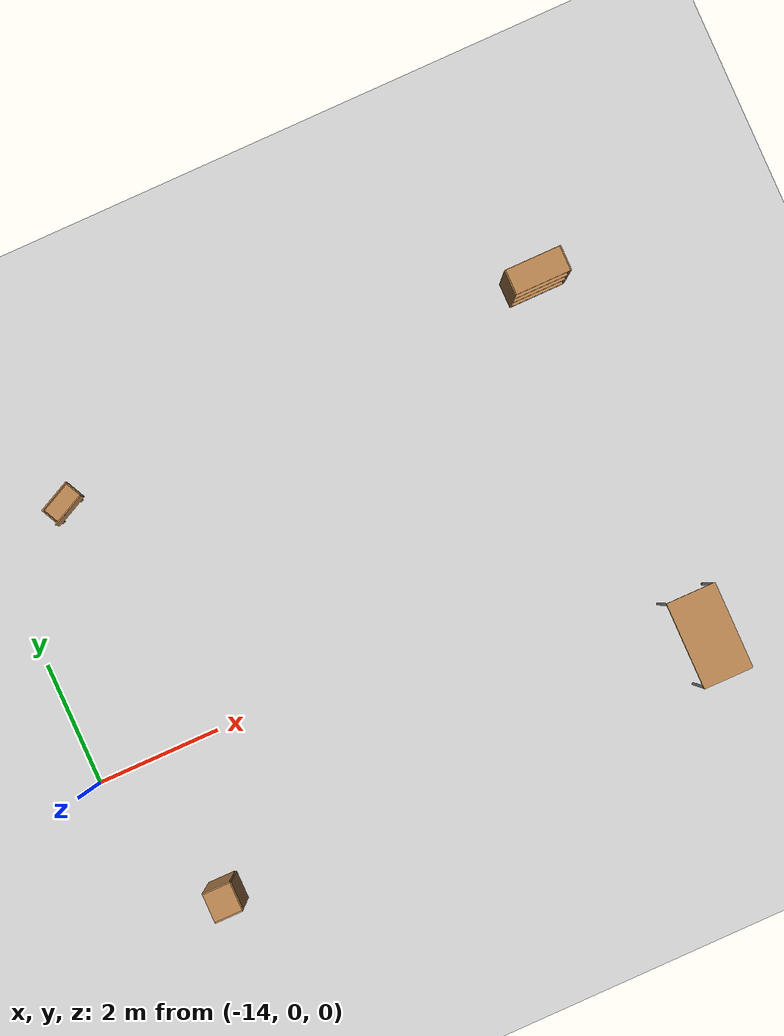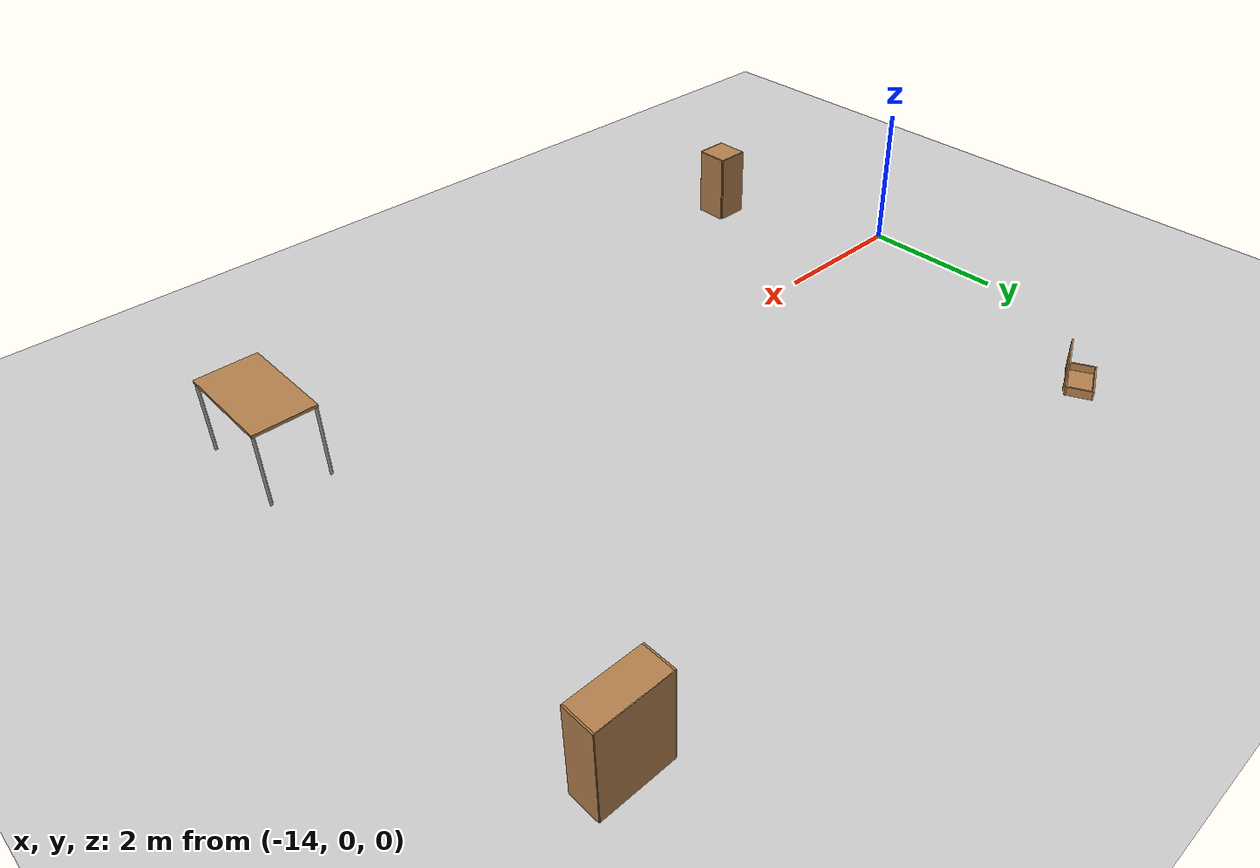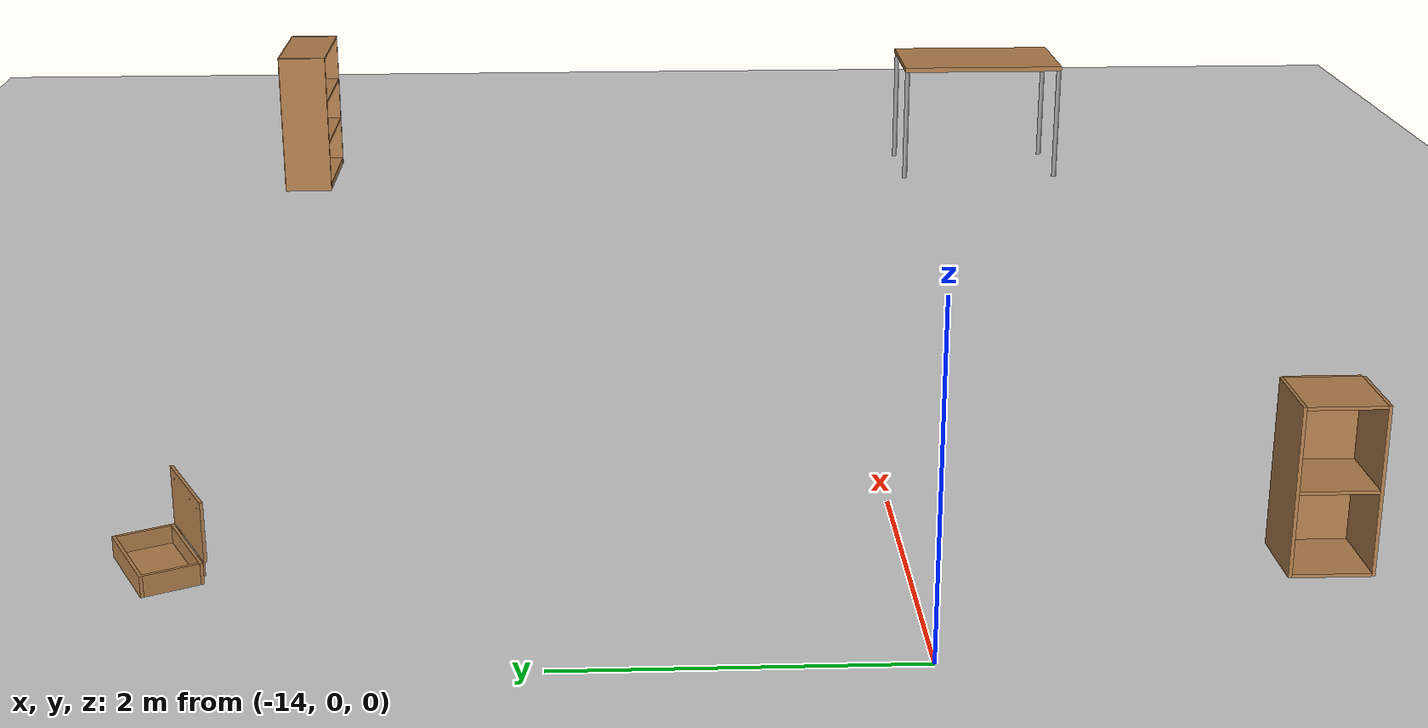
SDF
<sdf version="1.6">
 <world name="default">
  <model name="ground_plane">
   <static>1</static>
   <link name="link">
    <collision name="collision">
     <geometry><plane><normal>0 0 1</normal><size>100 100</size></plane></geometry>
     <surface><friction><ode><mu>100</mu><mu2>50</mu2></ode></friction></surface>
    </collision>
    <visual name="visual">
     <cast_shadows>0</cast_shadows>
     <geometry><plane><normal>0 0 1</normal><size>100 100</size></plane></geometry>
     <material>
      <script><uri>file://media/materials/scripts/gazebo.material</uri><name>Gazebo/Grey</name></script>
     </material>
    </visual>
   </link>
  </model>
  <model name="cabinet">
   <static>1</static>
   <link name="cabinet_bottom_plate">
    <inertial>
     <pose>0 0 -1 0 -0 0</pose>
     <inertia><ixx>2.05</ixx><ixy>0</ixy><ixz>0</ixz><iyy>2.05</iyy><iyz>0</iyz><izz>2.05</izz></inertia>
     <mass>25</mass>
    </inertial>
    <collision name="cabinet_bottom_plate_geom">
     <pose>0 0 0.01 0 -0 0</pose>
     <geometry><box><size>0.45 0.45 0.02</size></box></geometry>
    </collision>
    <visual name="cabinet_bottom_plate_geom_visual">
     <pose>0 0 0.01 0 -0 0</pose>
     <geometry><box><size>0.45 0.45 0.02</size></box></geometry>
     <material>
      <script><uri>file://media/materials/scripts/gazebo.material</uri><name>Gazebo/Wood</name></script>
     </material>
    </visual>
    <collision name="cabinet_bottom_plate_geom_cabinet_back_plate">
     <pose>0.235 0 0.51 0 -0 0</pose>
     <geometry><box><size>0.02 0.45 1.02</size></box></geometry>
    </collision>
    <visual name="cabinet_bottom_plate_geom_cabinet_back_plate_visual">
     <pose>0.235 0 0.51 0 -0 0</pose>
     <geometry><box><size>0.02 0.45 1.02</size></box></geometry>
     <material>
      <script><uri>file://media/materials/scripts/gazebo.material</uri><name>Gazebo/Wood</name></script>
     </material>
    </visual>
    <collision name="cabinet_bottom_plate_geom_cabinet_left_plate">
     <pose>0 0.235 0.51 0 -0 0</pose>
     <geometry><box><size>0.45 0.02 1.02</size></box></geometry>
    </collision>
    <visual name="cabinet_bottom_plate_geom_cabinet_left_plate_visual">
     <pose>0 0.235 0.51 0 -0 0</pose>
     <geometry><box><size>0.45 0.02 1.02</size></box></geometry>
     <material>
      <script><uri>file://media/materials/scripts/gazebo.material</uri><name>Gazebo/Wood</name></script>
     </material>
    </visual>
    <collision name="cabinet_bottom_plate_geom_cabinet_middle_plate">
     <pose>0 0 0.51 0 -0 0</pose>
     <geometry><box><size>0.45 0.45 0.02</size></box></geometry>
    </collision>
    <visual name="cabinet_bottom_plate_geom_cabinet_middle_plate_visual">
     <pose>0 0 0.51 0 -0 0</pose>
     <geometry><box><size>0.45 0.45 0.02</size></box></geometry>
     <material>
      <script><uri>file://media/materials/scripts/gazebo.material</uri><name>Gazebo/Wood</name></script>
     </material>
    </visual>
    <collision name="cabinet_bottom_plate_geom_cabinet_right_plate">
     <pose>0 -0.235 0.51 0 -0 0</pose>
     <geometry><box><size>0.45 0.02 1.02</size></box></geometry>
    </collision>
    <visual name="cabinet_bottom_plate_geom_cabinet_right_plate_visual">
     <pose>0 -0.235 0.51 0 -0 0</pose>
     <geometry><box><size>0.45 0.02 1.02</size></box></geometry>
     <material>
      <script><uri>file://media/materials/scripts/gazebo.material</uri><name>Gazebo/Wood</name></script>
     </material>
    </visual>
    <collision name="cabinet_bottom_plate_geom_cabinet_top_plate">
     <pose>0 0 1.01 0 -0 0</pose>
     <geometry><box><size>0.45 0.45 0.02</size></box></geometry>
    </collision>
    <visual name="cabinet_bottom_plate_geom_cabinet_top_plate_visual">
     <pose>0 0 1.01 0 -0 0</pose>
     <geometry><box><size>0.45 0.45 0.02</size></box></geometry>
     <material>
      <script><uri>file://media/materials/scripts/gazebo.material</uri><name>Gazebo/Wood</name></script>
     </material>
    </visual>
   </link>
   <pose>-12.8791 -2.34771 0 0 -0 0</pose>
  </model>
  <model name="bookshelf">
   <static>1</static>
   <link name="link">
    <inertial><mass>1</mass></inertial>
    <collision name="back">
     <pose>0 0.005 0.6 0 -0 0</pose>
     <geometry><box><size>0.9 0.01 1.2</size></box></geometry>
    </collision>
    <visual name="visual1">
     <pose>0 0.005 0.6 0 -0 0</pose>
     <geometry><box><size>0.9 0.01 1.2</size></box></geometry>
     <material>
      <script><uri>file://media/materials/scripts/gazebo.material</uri><name>Gazebo/Wood</name></script>
     </material>
    </visual>
    <collision name="left_side">
     <pose>0.45 -0.195 0.6 0 -0 0</pose>
     <geometry><box><size>0.02 0.4 1.2</size></box></geometry>
    </collision>
    <visual name="visual2">
     <pose>0.45 -0.195 0.6 0 -0 0</pose>
     <geometry><box><size>0.02 0.4 1.2</size></box></geometry>
     <material>
      <script><uri>file://media/materials/scripts/gazebo.material</uri><name>Gazebo/Wood</name></script>
     </material>
    </visual>
    <collision name="right_side">
     <pose>-0.45 -0.195 0.6 0 -0 0</pose>
     <geometry><box><size>0.02 0.4 1.2</size></box></geometry>
    </collision>
    <visual name="visual3">
     <pose>-0.45 -0.195 0.6 0 -0 0</pose>
     <geometry><box><size>0.02 0.4 1.2</size></box></geometry>
     <material>
      <script><uri>file://media/materials/scripts/gazebo.material</uri><name>Gazebo/Wood</name></script>
     </material>
    </visual>
    <collision name="bottom">
     <pose>0 -0.195 0.03 0 -0 0</pose>
     <geometry><box><size>0.88 0.4 0.06</size></box></geometry>
    </collision>
    <visual name="visual4">
     <pose>0 -0.195 0.03 0 -0 0</pose>
     <geometry><box><size>0.88 0.4 0.06</size></box></geometry>
     <material>
      <script><uri>file://media/materials/scripts/gazebo.material</uri><name>Gazebo/Wood</name></script>
     </material>
    </visual>
    <collision name="top">
     <pose>0 -0.195 1.19 0 -0 0</pose>
     <geometry><box><size>0.88 0.4 0.02</size></box></geometry>
    </collision>
    <visual name="visual5">
     <pose>0 -0.195 1.19 0 -0 0</pose>
     <geometry><box><size>0.88 0.4 0.02</size></box></geometry>
     <material>
      <script><uri>file://media/materials/scripts/gazebo.material</uri><name>Gazebo/Wood</name></script>
     </material>
    </visual>
    <collision name="low_shelf">
     <pose>0 -0.195 0.43 0 -0 0</pose>
     <geometry><box><size>0.88 0.4 0.02</size></box></geometry>
    </collision>
    <visual name="visual6">
     <pose>0 -0.195 0.43 0 -0 0</pose>
     <geometry><box><size>0.88 0.4 0.02</size></box></geometry>
     <material>
      <script><uri>file://media/materials/scripts/gazebo.material</uri><name>Gazebo/Wood</name></script>
     </material>
    </visual>
    <collision name="high_shelf">
     <pose>0 -0.195 0.8 0 -0 0</pose>
     <geometry><box><size>0.88 0.4 0.02</size></box></geometry>
    </collision>
    <visual name="visual7">
     <pose>0 -0.195 0.8 0 -0 0</pose>
     <geometry><box><size>0.88 0.4 0.02</size></box></geometry>
     <material>
      <script><uri>file://media/materials/scripts/gazebo.material</uri><name>Gazebo/Wood</name></script>
     </material>
    </visual>
   </link>
   <pose>-4.71155 4.52272 0 0 -0 0</pose>
  </model>
  <model name="table_0">
   <static>0</static>
   <link name="link">
    <collision name="surface">
     <pose>0 0 1 0 -0 0</pose>
     <geometry><box><size>1.5 0.8 0.03</size></box></geometry>
     <surface><friction><ode><mu>0.6</mu><mu2>0.6</mu2></ode></friction></surface>
    </collision>
    <visual name="visual1">
     <pose>0 0 1 0 -0 0</pose>
     <geometry><box><size>1.4 0.8 0.04</size></box></geometry>
     <material>
      <script><uri>file://media/materials/scripts/gazebo.material</uri><name>Gazebo/Wood</name></script>
     </material>
    </visual>
    <collision name="front_left_leg">
     <pose>0.68 0.38 0.5 0 -0 0</pose>
     <geometry><cylinder><radius>0.02</radius><length>1</length></cylinder></geometry>
    </collision>
    <visual name="front_left_leg">
     <pose>0.68 0.38 0.5 0 -0 0</pose>
     <geometry><cylinder><radius>0.02</radius><length>1</length></cylinder></geometry>
     <material>
      <script><uri>file://media/materials/scripts/gazebo.material</uri><name>Gazebo/Grey</name></script>
     </material>
    </visual>
    <collision name="front_right_leg">
     <pose>0.68 -0.38 0.5 0 -0 0</pose>
     <geometry><cylinder><radius>0.02</radius><length>1</length></cylinder></geometry>
    </collision>
    <visual name="front_right_leg">
     <pose>0.68 -0.38 0.5 0 -0 0</pose>
     <geometry><cylinder><radius>0.02</radius><length>1</length></cylinder></geometry>
     <material>
      <script><uri>file://media/materials/scripts/gazebo.material</uri><name>Gazebo/Grey</name></script>
     </material>
    </visual>
    <collision name="back_right_leg">
     <pose>-0.68 -0.38 0.5 0 -0 0</pose>
     <geometry><cylinder><radius>0.02</radius><length>1</length></cylinder></geometry>
    </collision>
    <visual name="back_right_leg">
     <pose>-0.68 -0.38 0.5 0 -0 0</pose>
     <geometry><cylinder><radius>0.02</radius><length>1</length></cylinder></geometry>
     <material>
      <script><uri>file://media/materials/scripts/gazebo.material</uri><name>Gazebo/Grey</name></script>
     </material>
    </visual>
    <collision name="back_left_leg">
     <pose>-0.68 0.38 0.5 0 -0 0</pose>
     <geometry><cylinder><radius>0.02</radius><length>1</length></cylinder></geometry>
    </collision>
    <visual name="back_left_leg">
     <pose>-0.68 0.38 0.5 0 -0 0</pose>
     <geometry><cylinder><radius>0.02</radius><length>1</length></cylinder></geometry>
     <material>
      <script><uri>file://media/materials/scripts/gazebo.material</uri><name>Gazebo/Grey</name></script>
     </material>
    </visual>
    <inertial>
     <inertia><ixx>1</ixx><ixy>0</ixy><ixz>0</ixz><iyy>1</iyy><iyz>0</iyz><izz>1</izz></inertia>
     <mass>1</mass>
    </inertial>
   </link>
   <pose>-4.58417 -1.69388 -8e-06 1e-06 -0 -1.57405</pose>
  </model>
  <model name="wooden_case_clone">
   <link name="base">
    <pose>0 0 0.024 0 -0 0</pose>
    <inertial>
     <pose>-0.022184 0 0.171592 0 -0 0</pose>
     <mass>3.96264</mass>
     <inertia>
      <ixx>0.213536</ixx>
      <ixy>0</ixy>
      <ixz>0.000779377</ixz>
      <iyy>0.0708943</iyy>
      <iyz>0</iyz>
      <izz>0.154604</izz>
     </inertia>
    </inertial>
    <collision name="collision_back">
     <pose>-0.053975 0 0.1778 0 -0 0</pose>
     <geometry><box><size>0.01905 0.5461 0.3175</size></box></geometry>
     <surface>
      <contact>
       <poissons_ratio>0.347</poissons_ratio>
       <elastic_modulus>8.8e+09</elastic_modulus>
       <ode><kp>100000</kp><kd>100</kd><max_vel>100</max_vel><min_depth>0.001</min_depth></ode>
      </contact>
      <friction>
       <torsional>
        <coefficient>1</coefficient>
        <use_patch_radius>0</use_patch_radius>
        <surface_radius>0.01</surface_radius>
       </torsional>
      </friction>
     </surface>
    </collision>
    <visual name="visual_back">
     <pose>-0.053975 0 0.1778 0 -0 0</pose>
     <geometry><box><size>0.01905 0.5461 0.3175</size></box></geometry>
     <material>
      <script><uri>file://media/materials/scripts/gazebo.material</uri><name>Gazebo/Wood</name></script>
     </material>
    </visual>
    <collision name="collision_bottom">
     <pose>0 0 0.009525 0 -0 0</pose>
     <geometry><box><size>0.127 0.5842 0.01905</size></box></geometry>
     <surface>
      <contact>
       <poissons_ratio>0.347</poissons_ratio>
       <elastic_modulus>8.8e+09</elastic_modulus>
       <ode><kp>100000</kp><kd>100</kd><max_vel>100</max_vel><min_depth>0.001</min_depth></ode>
      </contact>
      <friction>
       <torsional>
        <coefficient>1</coefficient>
        <use_patch_radius>0</use_patch_radius>
        <surface_radius>0.01</surface_radius>
       </torsional>
      </friction>
     </surface>
    </collision>
    <visual name="visual_bottom">
     <pose>0 0 0.009525 0 -0 0</pose>
     <geometry><box><size>0.127 0.5842 0.01905</size></box></geometry>
     <material>
      <script><uri>file://media/materials/scripts/gazebo.material</uri><name>Gazebo/Wood</name></script>
     </material>
    </visual>
    <collision name="collision_top">
     <pose>0 0 0.346075 0 -0 0</pose>
     <geometry><box><size>0.127 0.5842 0.01905</size></box></geometry>
     <surface>
      <contact>
       <poissons_ratio>0.347</poissons_ratio>
       <elastic_modulus>8.8e+09</elastic_modulus>
       <ode><kp>100000</kp><kd>100</kd><max_vel>100</max_vel><min_depth>0.001</min_depth></ode>
      </contact>
      <friction>
       <torsional>
        <coefficient>1</coefficient>
        <use_patch_radius>0</use_patch_radius>
        <surface_radius>0.01</surface_radius>
       </torsional>
      </friction>
     </surface>
    </collision>
    <visual name="visual_top">
     <pose>0 0 0.346075 0 -0 0</pose>
     <geometry><box><size>0.127 0.5842 0.01905</size></box></geometry>
     <material>
      <script><uri>file://media/materials/scripts/gazebo.material</uri><name>Gazebo/Wood</name></script>
     </material>
    </visual>
    <collision name="collision_left">
     <pose>0 -0.282575 0.1778 0 -0 0</pose>
     <geometry><box><size>0.127 0.01905 0.3175</size></box></geometry>
     <surface>
      <contact>
       <poissons_ratio>0.347</poissons_ratio>
       <elastic_modulus>8.8e+09</elastic_modulus>
       <ode><kp>100000</kp><kd>100</kd><max_vel>100</max_vel><min_depth>0.001</min_depth></ode>
      </contact>
      <friction>
       <torsional>
        <coefficient>1</coefficient>
        <use_patch_radius>0</use_patch_radius>
        <surface_radius>0.01</surface_radius>
       </torsional>
      </friction>
     </surface>
    </collision>
    <visual name="visual_left">
     <pose>0 -0.282575 0.1778 0 -0 0</pose>
     <geometry><box><size>0.127 0.01905 0.3175</size></box></geometry>
     <material>
      <script><uri>file://media/materials/scripts/gazebo.material</uri><name>Gazebo/Wood</name></script>
     </material>
    </visual>
    <collision name="collision_right">
     <pose>0 0.282575 0.1778 0 -0 0</pose>
     <geometry><box><size>0.127 0.01905 0.3175</size></box></geometry>
     <surface>
      <contact>
       <poissons_ratio>0.347</poissons_ratio>
       <elastic_modulus>8.8e+09</elastic_modulus>
       <ode><kp>100000</kp><kd>100</kd><max_vel>100</max_vel><min_depth>0.001</min_depth></ode>
      </contact>
      <friction>
       <torsional>
        <coefficient>1</coefficient>
        <use_patch_radius>0</use_patch_radius>
        <surface_radius>0.01</surface_radius>
       </torsional>
      </friction>
     </surface>
    </collision>
    <visual name="visual_right">
     <pose>0 0.282575 0.1778 0 -0 0</pose>
     <geometry><box><size>0.127 0.01905 0.3175</size></box></geometry>
     <material>
      <script><uri>file://media/materials/scripts/gazebo.material</uri><name>Gazebo/Wood</name></script>
     </material>
    </visual>
    <collision name="collision_block_left">
     <pose>0.0095 -0.2151 -0.012 0 -0 0</pose>
     <geometry><box><size>0.108 0.05 0.024</size></box></geometry>
     <surface>
      <contact>
       <poissons_ratio>0.347</poissons_ratio>
       <elastic_modulus>8.8e+09</elastic_modulus>
       <ode><kp>100000</kp><kd>100</kd><max_vel>100</max_vel><min_depth>0.001</min_depth></ode>
      </contact>
      <friction>
       <torsional>
        <coefficient>1</coefficient>
        <use_patch_radius>0</use_patch_radius>
        <surface_radius>0.01</surface_radius>
       </torsional>
      </friction>
     </surface>
    </collision>
    <visual name="visual_block_left">
     <pose>0.0095 -0.2151 -0.012 0 -0 0</pose>
     <geometry><box><size>0.108 0.05 0.024</size></box></geometry>
     <material>
      <script><uri>file://media/materials/scripts/gazebo.material</uri><name>Gazebo/Wood</name></script>
     </material>
    </visual>
    <collision name="collision_block_right">
     <pose>0.0095 0.2151 -0.012 0 -0 0</pose>
     <geometry><box><size>0.108 0.05 0.024</size></box></geometry>
     <surface>
      <contact>
       <poissons_ratio>0.347</poissons_ratio>
       <elastic_modulus>8.8e+09</elastic_modulus>
       <ode><kp>100000</kp><kd>100</kd><max_vel>100</max_vel><min_depth>0.001</min_depth></ode>
      </contact>
      <friction>
       <torsional>
        <coefficient>1</coefficient>
        <use_patch_radius>0</use_patch_radius>
        <surface_radius>0.01</surface_radius>
       </torsional>
      </friction>
     </surface>
    </collision>
    <visual name="visual_block_right">
     <pose>0.0095 0.2151 -0.012 0 -0 0</pose>
     <geometry><box><size>0.108 0.05 0.024</size></box></geometry>
     <material>
      <script><uri>file://media/materials/scripts/gazebo.material</uri><name>Gazebo/Wood</name></script>
     </material>
    </visual>
   </link>
   <link name="lid">
    <pose>0.243775 0 0.009525 0 -0 0</pose>
    <inertial>
     <mass>1.97874</mass>
     <inertia>
      <ixx>0.0563367</ixx>
      <ixy>0</ixy>
      <ixz>0</ixz>
      <iyy>0.020911</iyy>
      <iyz>0</iyz>
      <izz>0.0771281</izz>
     </inertia>
    </inertial>
    <collision name="collision">
     <geometry><box><size>0.3556 0.5842 0.01905</size></box></geometry>
     <surface>
      <contact>
       <poissons_ratio>0.347</poissons_ratio>
       <elastic_modulus>8.8e+09</elastic_modulus>
       <ode><kp>100000</kp><kd>100</kd><max_vel>100</max_vel><min_depth>0.001</min_depth></ode>
      </contact>
      <friction>
       <torsional>
        <coefficient>1</coefficient>
        <use_patch_radius>0</use_patch_radius>
        <surface_radius>0.01</surface_radius>
       </torsional>
      </friction>
     </surface>
    </collision>
    <visual name="visual">
     <geometry><box><size>0.3556 0.5842 0.01905</size></box></geometry>
     <material>
      <script><uri>file://media/materials/scripts/gazebo.material</uri><name>Gazebo/Wood</name></script>
     </material>
    </visual>
    <visual name="tee_nut_1">
     <pose>0.122 -0.216 0 0 -0 0</pose>
     <geometry><cylinder><radius>0.00635</radius><length>0.0192405</length></cylinder></geometry>
     <material>
      <script><uri>file://media/materials/scripts/gazebo.material</uri><name>Gazebo/Grey</name></script>
     </material>
    </visual>
    <visual name="tee_nut_2">
     <pose>0.122 -0.088 0 0 -0 0</pose>
     <geometry><cylinder><radius>0.00635</radius><length>0.0192405</length></cylinder></geometry>
     <material>
      <script><uri>file://media/materials/scripts/gazebo.material</uri><name>Gazebo/Grey</name></script>
     </material>
    </visual>
    <visual name="tee_nut_3">
     <pose>0.122 0.088 0 0 -0 0</pose>
     <geometry><cylinder><radius>0.00635</radius><length>0.0192405</length></cylinder></geometry>
     <material>
      <script><uri>file://media/materials/scripts/gazebo.material</uri><name>Gazebo/Grey</name></script>
     </material>
    </visual>
    <visual name="tee_nut_4">
     <pose>0.122 0.216 0 0 -0 0</pose>
     <geometry><cylinder><radius>0.00635</radius><length>0.0192405</length></cylinder></geometry>
     <material>
      <script><uri>file://media/materials/scripts/gazebo.material</uri><name>Gazebo/Grey</name></script>
     </material>
    </visual>
   </link>
   <joint name="lid_hinge" type="revolute">
    <pose>-0.1778 0 0.01905 0 -0 0</pose>
    <parent>base</parent>
    <child>lid</child>
    <axis>
     <xyz>0 1 0</xyz>
     <limit><upper>0.523599</upper><lower>-1.5708</lower></limit>
     <use_parent_model_frame>0</use_parent_model_frame>
     <dynamics><spring_reference>0</spring_reference><spring_stiffness>0</spring_stiffness></dynamics>
    </axis>
   </joint>
   <pose>-12.654 4.01176 0.062483 1e-06 -1.57076 -1.11468</pose>
  </model>
 </world>
</sdf>
